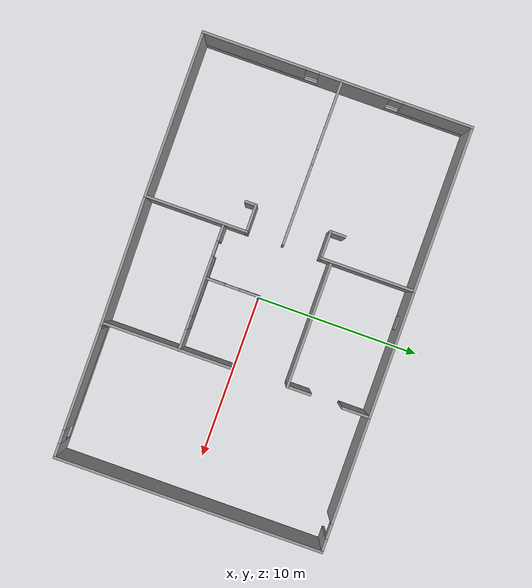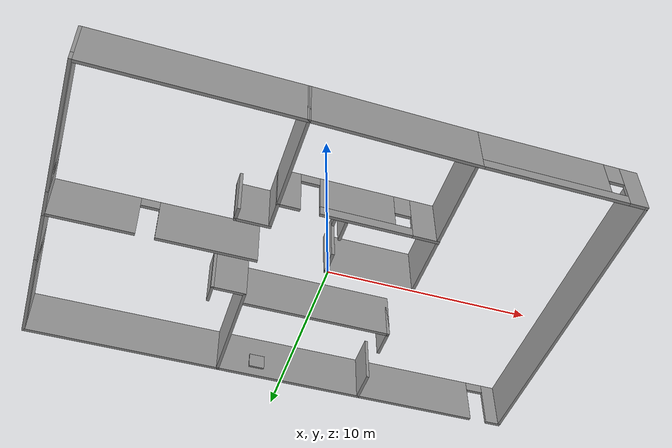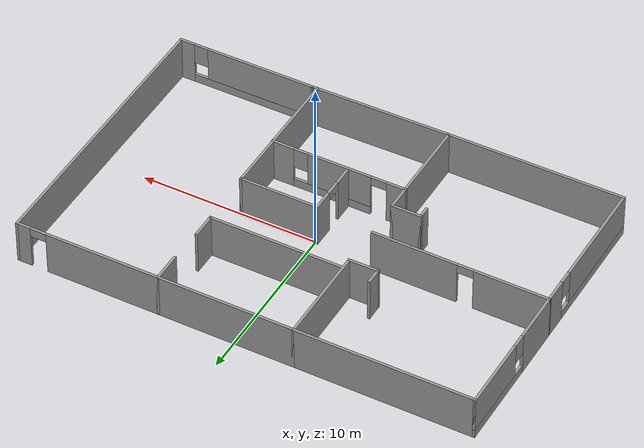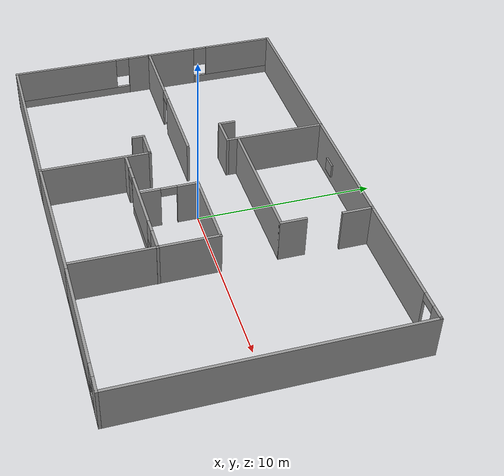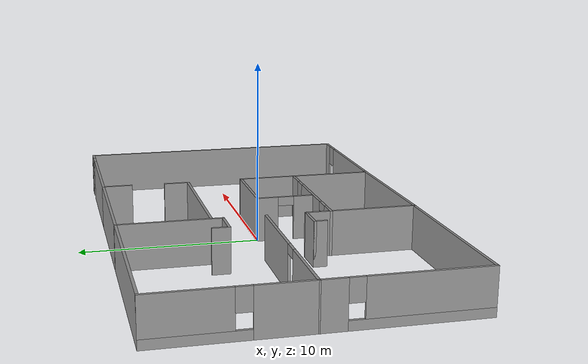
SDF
<?xml version='1.0'?>
<sdf version='1.6'>
  <model name='My_Building'>
    <pose frame=''>-0.418788 0.131839 0 0 -0 0</pose>
    <link name='Wall_67'>
      <pose frame=''>-12.7748 4.17547 0 0 -0 1.5708</pose>
      <visual name='Wall_67_Visual_0'>
        <pose frame=''>-2.51329 0 1.25 0 -0 0</pose>
        <geometry>
          <box>
            <size>2.97343 0.15 2.5</size>
          </box>
        </geometry>
        <material>
          <script>
            <uri>file://media/materials/scripts/gazebo.material</uri>
            <name>Gazebo/Grey</name>
          </script>
          <ambient>1 1 1 1</ambient>
        </material>
        <meta>
          <layer>0</layer>
        </meta>
      </visual>
      <collision name='Wall_67_Collision_0'>
        <geometry>
          <box>
            <size>2.97343 0.15 2.5</size>
          </box>
        </geometry>
        <pose frame=''>-2.51329 0 1.25 0 -0 0</pose>
      </collision>
      <visual name='Wall_67_Visual_1'>
        <pose frame=''>1.48671 0 0.25 0 -0 0</pose>
        <geometry>
          <box>
            <size>5.02658 0.15 0.5</size>
          </box>
        </geometry>
        <material>
          <script>
            <uri>file://media/materials/scripts/gazebo.material</uri>
            <name>Gazebo/Grey</name>
          </script>
          <ambient>1 1 1 1</ambient>
        </material>
        <meta>
          <layer>0</layer>
        </meta>
      </visual>
      <collision name='Wall_67_Collision_1'>
        <geometry>
          <box>
            <size>5.02658 0.15 0.5</size>
          </box>
        </geometry>
        <pose frame=''>1.48671 0 0.25 0 -0 0</pose>
      </collision>
      <visual name='Wall_67_Visual_2'>
        <pose frame=''>1.88671 0 1.5 0 -0 0</pose>
        <geometry>
          <box>
            <size>4.22658 0.15 2</size>
          </box>
        </geometry>
        <material>
          <script>
            <uri>file://media/materials/scripts/gazebo.material</uri>
            <name>Gazebo/Grey</name>
          </script>
          <ambient>1 1 1 1</ambient>
        </material>
        <meta>
          <layer>0</layer>
        </meta>
      </visual>
      <collision name='Wall_67_Collision_2'>
        <geometry>
          <box>
            <size>4.22658 0.15 2</size>
          </box>
        </geometry>
        <pose frame=''>1.88671 0 1.5 0 -0 0</pose>
      </collision>
      <visual name='Wall_67_Visual_3'>
        <pose frame=''>-0.626575 0 1.9 0 -0 0</pose>
        <geometry>
          <box>
            <size>0.8 0.15 1.2</size>
          </box>
        </geometry>
        <material>
          <script>
            <uri>file://media/materials/scripts/gazebo.material</uri>
            <name>Gazebo/Grey</name>
          </script>
          <ambient>1 1 1 1</ambient>
        </material>
        <meta>
          <layer>0</layer>
        </meta>
      </visual>
      <collision name='Wall_67_Collision_3'>
        <geometry>
          <box>
            <size>0.8 0.15 1.2</size>
          </box>
        </geometry>
        <pose frame=''>-0.626575 0 1.9 0 -0 0</pose>
      </collision>
    </link>
    <link name='Wall_68'>
      <collision name='Wall_68_Collision'>
        <geometry>
          <box>
            <size>10 0.15 2.5</size>
          </box>
        </geometry>
        <pose frame=''>0 0 1.25 0 -0 0</pose>
      </collision>
      <visual name='Wall_68_Visual'>
        <pose frame=''>0 0 1.25 0 -0 0</pose>
        <geometry>
          <box>
            <size>10 0.15 2.5</size>
          </box>
        </geometry>
        <material>
          <script>
            <uri>file://media/materials/scripts/gazebo.material</uri>
            <name>Gazebo/Grey</name>
          </script>
          <ambient>1 1 1 1</ambient>
        </material>
        <meta>
          <layer>0</layer>
        </meta>
      </visual>
      <pose frame=''>-7.8498 8.10047 0 0 -0 0</pose>
    </link>
    <link name='Wall_69'>
      <collision name='Wall_69_Collision'>
        <geometry>
          <box>
            <size>5.75 0.15 2.5</size>
          </box>
        </geometry>
        <pose frame=''>0 0 1.25 0 -0 0</pose>
      </collision>
      <visual name='Wall_69_Visual'>
        <pose frame=''>0 0 1.25 0 -0 0</pose>
        <geometry>
          <box>
            <size>5.75 0.15 2.5</size>
          </box>
        </geometry>
        <material>
          <script>
            <uri>file://media/materials/scripts/gazebo.material</uri>
            <name>Gazebo/Grey</name>
          </script>
          <ambient>1 1 1 1</ambient>
        </material>
        <meta>
          <layer>0</layer>
        </meta>
      </visual>
      <pose frame=''>-2.9248 5.30047 0 0 -0 -1.5708</pose>
    </link>
    <link name='Wall_70'>
      <collision name='Wall_70_Collision'>
        <geometry>
          <box>
            <size>1.75 0.15 2.5</size>
          </box>
        </geometry>
        <pose frame=''>0 0 1.25 0 -0 0</pose>
      </collision>
      <visual name='Wall_70_Visual'>
        <pose frame=''>0 0 1.25 0 -0 0</pose>
        <geometry>
          <box>
            <size>1.75 0.15 2.5</size>
          </box>
        </geometry>
        <material>
          <script>
            <uri>file://media/materials/scripts/gazebo.material</uri>
            <name>Gazebo/Grey</name>
          </script>
          <ambient>1 1 1 1</ambient>
        </material>
        <meta>
          <layer>0</layer>
        </meta>
      </visual>
      <pose frame=''>-3.7248 2.50047 0 0 -0 3.14159</pose>
    </link>
    <link name='Wall_71'>
      <collision name='Wall_71_Collision'>
        <geometry>
          <box>
            <size>1 0.15 2.5</size>
          </box>
        </geometry>
        <pose frame=''>0 0 1.25 0 -0 0</pose>
      </collision>
      <visual name='Wall_71_Visual'>
        <pose frame=''>0 0 1.25 0 -0 0</pose>
        <geometry>
          <box>
            <size>1 0.15 2.5</size>
          </box>
        </geometry>
        <material>
          <script>
            <uri>file://media/materials/scripts/gazebo.material</uri>
            <name>Gazebo/Grey</name>
          </script>
          <ambient>1 1 1 1</ambient>
        </material>
        <meta>
          <layer>0</layer>
        </meta>
      </visual>
      <pose frame=''>-4.5248 2.92547 0 0 -0 1.5708</pose>
    </link>
    <link name='Wall_73'>
      <pose frame=''>-7.88036 0.223874 0 0 -0 3.13616</pose>
      <visual name='Wall_73_Visual_0'>
        <pose frame=''>-2.55008 0 1.25 0 -0 0</pose>
        <geometry>
          <box>
            <size>4.83885 0.15 2.5</size>
          </box>
        </geometry>
        <material>
          <script>
            <uri>file://media/materials/scripts/gazebo.material</uri>
            <name>Gazebo/Grey</name>
          </script>
          <ambient>1 1 1 1</ambient>
        </material>
        <meta>
          <layer>0</layer>
        </meta>
      </visual>
      <collision name='Wall_73_Collision_0'>
        <geometry>
          <box>
            <size>4.83885 0.15 2.5</size>
          </box>
        </geometry>
        <pose frame=''>-2.55008 0 1.25 0 -0 0</pose>
      </collision>
      <visual name='Wall_73_Visual_1'>
        <pose frame=''>2.86943 0 1.25 0 -0 0</pose>
        <geometry>
          <box>
            <size>4.20017 0.15 2.5</size>
          </box>
        </geometry>
        <material>
          <script>
            <uri>file://media/materials/scripts/gazebo.material</uri>
            <name>Gazebo/Grey</name>
          </script>
          <ambient>1 1 1 1</ambient>
        </material>
        <meta>
          <layer>0</layer>
        </meta>
      </visual>
      <collision name='Wall_73_Collision_1'>
        <geometry>
          <box>
            <size>4.20017 0.15 2.5</size>
          </box>
        </geometry>
        <pose frame=''>2.86943 0 1.25 0 -0 0</pose>
      </collision>
      <visual name='Wall_73_Visual_2'>
        <pose frame=''>0.319343 0 2.25 0 -0 0</pose>
        <geometry>
          <box>
            <size>0.9 0.15 0.5</size>
          </box>
        </geometry>
        <material>
          <script>
            <uri>file://media/materials/scripts/gazebo.material</uri>
            <name>Gazebo/Grey</name>
          </script>
          <ambient>1 1 1 1</ambient>
        </material>
        <meta>
          <layer>0</layer>
        </meta>
      </visual>
      <collision name='Wall_73_Collision_2'>
        <geometry>
          <box>
            <size>0.9 0.15 0.5</size>
          </box>
        </geometry>
        <pose frame=''>0.319343 0 2.25 0 -0 0</pose>
      </collision>
    </link>
    <link name='Wall_74'>
      <pose frame=''>-12.7748 -3.92453 0 0 -0 -1.5708</pose>
      <visual name='Wall_74_Visual_0'>
        <pose frame=''>-3.53469 0 1.25 0 -0 0</pose>
        <geometry>
          <box>
            <size>1.43061 0.15 2.5</size>
          </box>
        </geometry>
        <material>
          <script>
            <uri>file://media/materials/scripts/gazebo.material</uri>
            <name>Gazebo/Grey</name>
          </script>
          <ambient>1 1 1 1</ambient>
        </material>
        <meta>
          <layer>0</layer>
        </meta>
      </visual>
      <collision name='Wall_74_Collision_0'>
        <geometry>
          <box>
            <size>1.43061 0.15 2.5</size>
          </box>
        </geometry>
        <pose frame=''>-3.53469 0 1.25 0 -0 0</pose>
      </collision>
      <visual name='Wall_74_Visual_1'>
        <pose frame=''>0.715307 0 0.25 0 -0 0</pose>
        <geometry>
          <box>
            <size>7.06939 0.15 0.5</size>
          </box>
        </geometry>
        <material>
          <script>
            <uri>file://media/materials/scripts/gazebo.material</uri>
            <name>Gazebo/Grey</name>
          </script>
          <ambient>1 1 1 1</ambient>
        </material>
        <meta>
          <layer>0</layer>
        </meta>
      </visual>
      <collision name='Wall_74_Collision_1'>
        <geometry>
          <box>
            <size>7.06939 0.15 0.5</size>
          </box>
        </geometry>
        <pose frame=''>0.715307 0 0.25 0 -0 0</pose>
      </collision>
      <visual name='Wall_74_Visual_2'>
        <pose frame=''>1.11531 0 1.5 0 -0 0</pose>
        <geometry>
          <box>
            <size>6.26939 0.15 2</size>
          </box>
        </geometry>
        <material>
          <script>
            <uri>file://media/materials/scripts/gazebo.material</uri>
            <name>Gazebo/Grey</name>
          </script>
          <ambient>1 1 1 1</ambient>
        </material>
        <meta>
          <layer>0</layer>
        </meta>
      </visual>
      <collision name='Wall_74_Collision_2'>
        <geometry>
          <box>
            <size>6.26939 0.15 2</size>
          </box>
        </geometry>
        <pose frame=''>1.11531 0 1.5 0 -0 0</pose>
      </collision>
      <visual name='Wall_74_Visual_3'>
        <pose frame=''>-2.41939 0 1.9 0 -0 0</pose>
        <geometry>
          <box>
            <size>0.8 0.15 1.2</size>
          </box>
        </geometry>
        <material>
          <script>
            <uri>file://media/materials/scripts/gazebo.material</uri>
            <name>Gazebo/Grey</name>
          </script>
          <ambient>1 1 1 1</ambient>
        </material>
        <meta>
          <layer>0</layer>
        </meta>
      </visual>
      <collision name='Wall_74_Collision_3'>
        <geometry>
          <box>
            <size>0.8 0.15 1.2</size>
          </box>
        </geometry>
        <pose frame=''>-2.41939 0 1.9 0 -0 0</pose>
      </collision>
    </link>
    <link name='Wall_75'>
      <collision name='Wall_75_Collision'>
        <geometry>
          <box>
            <size>10 0.15 2.5</size>
          </box>
        </geometry>
        <pose frame=''>0 0 1.25 0 -0 0</pose>
      </collision>
      <visual name='Wall_75_Visual'>
        <pose frame=''>0 0 1.25 0 -0 0</pose>
        <geometry>
          <box>
            <size>10 0.15 2.5</size>
          </box>
        </geometry>
        <material>
          <script>
            <uri>file://media/materials/scripts/gazebo.material</uri>
            <name>Gazebo/Grey</name>
          </script>
          <ambient>1 1 1 1</ambient>
        </material>
        <meta>
          <layer>0</layer>
        </meta>
      </visual>
      <pose frame=''>-7.8498 -8.09953 0 0 -0 0</pose>
    </link>
    <link name='Wall_76'>
      <collision name='Wall_76_Collision'>
        <geometry>
          <box>
            <size>6.25 0.15 2.5</size>
          </box>
        </geometry>
        <pose frame=''>0 0 1.25 0 -0 0</pose>
      </collision>
      <visual name='Wall_76_Visual'>
        <pose frame=''>0 0 1.25 0 -0 0</pose>
        <geometry>
          <box>
            <size>6.25 0.15 2.5</size>
          </box>
        </geometry>
        <material>
          <script>
            <uri>file://media/materials/scripts/gazebo.material</uri>
            <name>Gazebo/Grey</name>
          </script>
          <ambient>1 1 1 1</ambient>
        </material>
        <meta>
          <layer>0</layer>
        </meta>
      </visual>
      <pose frame=''>-2.9248 -5.04953 0 0 -0 1.5708</pose>
    </link>
    <link name='Wall_77'>
      <collision name='Wall_77_Collision'>
        <geometry>
          <box>
            <size>1.75 0.15 2.5</size>
          </box>
        </geometry>
        <pose frame=''>0 0 1.25 0 -0 0</pose>
      </collision>
      <visual name='Wall_77_Visual'>
        <pose frame=''>0 0 1.25 0 -0 0</pose>
        <geometry>
          <box>
            <size>1.75 0.15 2.5</size>
          </box>
        </geometry>
        <material>
          <script>
            <uri>file://media/materials/scripts/gazebo.material</uri>
            <name>Gazebo/Grey</name>
          </script>
          <ambient>1 1 1 1</ambient>
        </material>
        <meta>
          <layer>0</layer>
        </meta>
      </visual>
      <pose frame=''>-3.7248 -1.99953 0 0 -0 3.14159</pose>
    </link>
    <link name='Wall_78'>
      <collision name='Wall_78_Collision'>
        <geometry>
          <box>
            <size>0.75 0.15 2.5</size>
          </box>
        </geometry>
        <pose frame=''>0 0 1.25 0 -0 0</pose>
      </collision>
      <visual name='Wall_78_Visual'>
        <pose frame=''>0 0 1.25 0 -0 0</pose>
        <geometry>
          <box>
            <size>0.75 0.15 2.5</size>
          </box>
        </geometry>
        <material>
          <script>
            <uri>file://media/materials/scripts/gazebo.material</uri>
            <name>Gazebo/Grey</name>
          </script>
          <ambient>1 1 1 1</ambient>
        </material>
        <meta>
          <layer>0</layer>
        </meta>
      </visual>
      <pose frame=''>-4.5248 -2.29953 0 0 -0 -1.5708</pose>
    </link>
    <link name='Wall_80'>
      <collision name='Wall_80_Collision'>
        <geometry>
          <box>
            <size>7.5 0.15 2.5</size>
          </box>
        </geometry>
        <pose frame=''>0 0 1.25 0 -0 0</pose>
      </collision>
      <visual name='Wall_80_Visual'>
        <pose frame=''>0 0 1.25 0 -0 0</pose>
        <geometry>
          <box>
            <size>7.5 0.15 2.5</size>
          </box>
        </geometry>
        <material>
          <script>
            <uri>file://media/materials/scripts/gazebo.material</uri>
            <name>Gazebo/Grey</name>
          </script>
          <ambient>1 1 1 1</ambient>
        </material>
        <meta>
          <layer>0</layer>
        </meta>
      </visual>
      <pose frame=''>0.901877 3.1233 0 0 -0 0</pose>
    </link>
    <link name='Wall_81'>
      <collision name='Wall_81_Collision'>
        <geometry>
          <box>
            <size>1.5 0.15 2.5</size>
          </box>
        </geometry>
        <pose frame=''>0 0 1.25 0 -0 0</pose>
      </collision>
      <visual name='Wall_81_Visual'>
        <pose frame=''>0 0 1.25 0 -0 0</pose>
        <geometry>
          <box>
            <size>1.5 0.15 2.5</size>
          </box>
        </geometry>
        <material>
          <script>
            <uri>file://media/materials/scripts/gazebo.material</uri>
            <name>Gazebo/Grey</name>
          </script>
          <ambient>1 1 1 1</ambient>
        </material>
        <meta>
          <layer>0</layer>
        </meta>
      </visual>
      <pose frame=''>4.57688 3.7983 0 0 -0 1.5708</pose>
    </link>
    <link name='Wall_83'>
      <collision name='Wall_83_Collision'>
        <geometry>
          <box>
            <size>7.75 0.15 2.5</size>
          </box>
        </geometry>
        <pose frame=''>0 0 1.25 0 -0 0</pose>
      </collision>
      <visual name='Wall_83_Visual'>
        <pose frame=''>0 0 1.25 0 -0 0</pose>
        <geometry>
          <box>
            <size>7.75 0.15 2.5</size>
          </box>
        </geometry>
        <material>
          <script>
            <uri>file://media/materials/scripts/gazebo.material</uri>
            <name>Gazebo/Grey</name>
          </script>
          <ambient>1 1 1 1</ambient>
        </material>
        <meta>
          <layer>0</layer>
        </meta>
      </visual>
      <pose frame=''>0.875203 8.10047 0 0 -0 0</pose>
    </link>
    <link name='Wall_84'>
      <collision name='Wall_84_Collision'>
        <geometry>
          <box>
            <size>1.75 0.15 2.5</size>
          </box>
        </geometry>
        <pose frame=''>0 0 1.25 0 -0 0</pose>
      </collision>
      <visual name='Wall_84_Visual'>
        <pose frame=''>0 0 1.25 0 -0 0</pose>
        <geometry>
          <box>
            <size>1.75 0.15 2.5</size>
          </box>
        </geometry>
        <material>
          <script>
            <uri>file://media/materials/scripts/gazebo.material</uri>
            <name>Gazebo/Grey</name>
          </script>
          <ambient>1 1 1 1</ambient>
        </material>
        <meta>
          <layer>0</layer>
        </meta>
      </visual>
      <pose frame=''>4.6752 7.30047 0 0 -0 -1.5708</pose>
    </link>
    <link name='Wall_86'>
      <pose frame=''>8.7252 8.10047 0 0 -0 0</pose>
      <visual name='Wall_86_Visual_0'>
        <pose frame=''>-0.881209 0 1.25 0 -0 0</pose>
        <geometry>
          <box>
            <size>6.48758 0.15 2.5</size>
          </box>
        </geometry>
        <material>
          <script>
            <uri>file://media/materials/scripts/gazebo.material</uri>
            <name>Gazebo/Grey</name>
          </script>
          <ambient>1 1 1 1</ambient>
        </material>
        <meta>
          <layer>0</layer>
        </meta>
      </visual>
      <collision name='Wall_86_Collision_0'>
        <geometry>
          <box>
            <size>6.48758 0.15 2.5</size>
          </box>
        </geometry>
        <pose frame=''>-0.881209 0 1.25 0 -0 0</pose>
      </collision>
      <visual name='Wall_86_Visual_1'>
        <pose frame=''>3.69379 0 1.25 0 -0 0</pose>
        <geometry>
          <box>
            <size>0.862418 0.15 2.5</size>
          </box>
        </geometry>
        <material>
          <script>
            <uri>file://media/materials/scripts/gazebo.material</uri>
            <name>Gazebo/Grey</name>
          </script>
          <ambient>1 1 1 1</ambient>
        </material>
        <meta>
          <layer>0</layer>
        </meta>
      </visual>
      <collision name='Wall_86_Collision_1'>
        <geometry>
          <box>
            <size>0.862418 0.15 2.5</size>
          </box>
        </geometry>
        <pose frame=''>3.69379 0 1.25 0 -0 0</pose>
      </collision>
      <visual name='Wall_86_Visual_2'>
        <pose frame=''>2.81258 0 2.25 0 -0 0</pose>
        <geometry>
          <box>
            <size>0.9 0.15 0.5</size>
          </box>
        </geometry>
        <material>
          <script>
            <uri>file://media/materials/scripts/gazebo.material</uri>
            <name>Gazebo/Grey</name>
          </script>
          <ambient>1 1 1 1</ambient>
        </material>
        <meta>
          <layer>0</layer>
        </meta>
      </visual>
      <collision name='Wall_86_Collision_2'>
        <geometry>
          <box>
            <size>0.9 0.15 0.5</size>
          </box>
        </geometry>
        <pose frame=''>2.81258 0 2.25 0 -0 0</pose>
      </collision>
    </link>
    <link name='Wall_87'>
      <collision name='Wall_87_Collision'>
        <geometry>
          <box>
            <size>16.25 0.15 2.5</size>
          </box>
        </geometry>
        <pose frame=''>0 0 1.25 0 -0 0</pose>
      </collision>
      <visual name='Wall_87_Visual'>
        <pose frame=''>0 0 1.25 0 -0 0</pose>
        <geometry>
          <box>
            <size>16.25 0.15 2.5</size>
          </box>
        </geometry>
        <material>
          <script>
            <uri>file://media/materials/scripts/gazebo.material</uri>
            <name>Gazebo/Grey</name>
          </script>
          <ambient>1 1 1 1</ambient>
        </material>
        <meta>
          <layer>0</layer>
        </meta>
      </visual>
      <pose frame=''>12.7752 0.050474 0 0 -0 -1.5708</pose>
    </link>
    <link name='Wall_88'>
      <pose frame=''>8.8502 -7.99953 0 0 -0 3.14159</pose>
      <visual name='Wall_88_Visual_0'>
        <pose frame=''>-3.54379 0 1.25 0 -0 0</pose>
        <geometry>
          <box>
            <size>0.912418 0.15 2.5</size>
          </box>
        </geometry>
        <material>
          <script>
            <uri>file://media/materials/scripts/gazebo.material</uri>
            <name>Gazebo/Grey</name>
          </script>
          <ambient>1 1 1 1</ambient>
        </material>
        <meta>
          <layer>0</layer>
        </meta>
      </visual>
      <collision name='Wall_88_Collision_0'>
        <geometry>
          <box>
            <size>0.912418 0.15 2.5</size>
          </box>
        </geometry>
        <pose frame=''>-3.54379 0 1.25 0 -0 0</pose>
      </collision>
      <visual name='Wall_88_Visual_1'>
        <pose frame=''>0.456209 0 0.25 0 -0 0</pose>
        <geometry>
          <box>
            <size>7.08758 0.15 0.5</size>
          </box>
        </geometry>
        <material>
          <script>
            <uri>file://media/materials/scripts/gazebo.material</uri>
            <name>Gazebo/Grey</name>
          </script>
          <ambient>1 1 1 1</ambient>
        </material>
        <meta>
          <layer>0</layer>
        </meta>
      </visual>
      <collision name='Wall_88_Collision_1'>
        <geometry>
          <box>
            <size>7.08758 0.15 0.5</size>
          </box>
        </geometry>
        <pose frame=''>0.456209 0 0.25 0 -0 0</pose>
      </collision>
      <visual name='Wall_88_Visual_2'>
        <pose frame=''>0.856209 0 1.5 0 -0 0</pose>
        <geometry>
          <box>
            <size>6.28758 0.15 2</size>
          </box>
        </geometry>
        <material>
          <script>
            <uri>file://media/materials/scripts/gazebo.material</uri>
            <name>Gazebo/Grey</name>
          </script>
          <ambient>1 1 1 1</ambient>
        </material>
        <meta>
          <layer>0</layer>
        </meta>
      </visual>
      <collision name='Wall_88_Collision_2'>
        <geometry>
          <box>
            <size>6.28758 0.15 2</size>
          </box>
        </geometry>
        <pose frame=''>0.856209 0 1.5 0 -0 0</pose>
      </collision>
      <visual name='Wall_88_Visual_3'>
        <pose frame=''>-2.68758 0 1.9 0 -0 0</pose>
        <geometry>
          <box>
            <size>0.8 0.15 1.2</size>
          </box>
        </geometry>
        <material>
          <script>
            <uri>file://media/materials/scripts/gazebo.material</uri>
            <name>Gazebo/Grey</name>
          </script>
          <ambient>1 1 1 1</ambient>
        </material>
        <meta>
          <layer>0</layer>
        </meta>
      </visual>
      <collision name='Wall_88_Collision_3'>
        <geometry>
          <box>
            <size>0.8 0.15 1.2</size>
          </box>
        </geometry>
        <pose frame=''>-2.68758 0 1.9 0 -0 0</pose>
      </collision>
    </link>
    <link name='Wall_89'>
      <collision name='Wall_89_Collision'>
        <geometry>
          <box>
            <size>8.00064 0.15 2.5</size>
          </box>
        </geometry>
        <pose frame=''>0 0 1.25 0 -0 0</pose>
      </collision>
      <visual name='Wall_89_Visual'>
        <pose frame=''>0 0 1.25 0 -0 0</pose>
        <geometry>
          <box>
            <size>8.00064 0.15 2.5</size>
          </box>
        </geometry>
        <material>
          <script>
            <uri>file://media/materials/scripts/gazebo.material</uri>
            <name>Gazebo/Grey</name>
          </script>
          <ambient>1 1 1 1</ambient>
        </material>
        <meta>
          <layer>0</layer>
        </meta>
      </visual>
      <pose frame=''>1.0002 -8.04953 0 0 -0 -3.12885</pose>
    </link>
    <link name='Wall_91'>
      <pose frame=''>0.3125 -1.65755 0 0 -0 1.5708</pose>
      <visual name='Wall_91_Visual_0'>
        <pose frame=''>-1.06769 0 1.25 0 -0 0</pose>
        <geometry>
          <box>
            <size>1.11461 0.15 2.5</size>
          </box>
        </geometry>
        <material>
          <script>
            <uri>file://media/materials/scripts/gazebo.material</uri>
            <name>Gazebo/Grey</name>
          </script>
          <ambient>1 1 1 1</ambient>
        </material>
        <meta>
          <layer>0</layer>
        </meta>
      </visual>
      <collision name='Wall_91_Collision_0'>
        <geometry>
          <box>
            <size>1.11461 0.15 2.5</size>
          </box>
        </geometry>
        <pose frame=''>-1.06769 0 1.25 0 -0 0</pose>
      </collision>
      <visual name='Wall_91_Visual_1'>
        <pose frame=''>1.00731 0 1.25 0 -0 0</pose>
        <geometry>
          <box>
            <size>1.23539 0.15 2.5</size>
          </box>
        </geometry>
        <material>
          <script>
            <uri>file://media/materials/scripts/gazebo.material</uri>
            <name>Gazebo/Grey</name>
          </script>
          <ambient>1 1 1 1</ambient>
        </material>
        <meta>
          <layer>0</layer>
        </meta>
      </visual>
      <collision name='Wall_91_Collision_1'>
        <geometry>
          <box>
            <size>1.23539 0.15 2.5</size>
          </box>
        </geometry>
        <pose frame=''>1.00731 0 1.25 0 -0 0</pose>
      </collision>
      <visual name='Wall_91_Visual_2'>
        <pose frame=''>-0.060389 0 2.25 0 -0 0</pose>
        <geometry>
          <box>
            <size>0.9 0.15 0.5</size>
          </box>
        </geometry>
        <material>
          <script>
            <uri>file://media/materials/scripts/gazebo.material</uri>
            <name>Gazebo/Grey</name>
          </script>
          <ambient>1 1 1 1</ambient>
        </material>
        <meta>
          <layer>0</layer>
        </meta>
      </visual>
      <collision name='Wall_91_Collision_2'>
        <geometry>
          <box>
            <size>0.9 0.15 0.5</size>
          </box>
        </geometry>
        <pose frame=''>-0.060389 0 2.25 0 -0 0</pose>
      </collision>
    </link>
    <link name='Wall_92'>
      <collision name='Wall_92_Collision'>
        <geometry>
          <box>
            <size>4.5 0.15 2.5</size>
          </box>
        </geometry>
        <pose frame=''>0 0 1.25 0 -0 0</pose>
      </collision>
      <visual name='Wall_92_Visual'>
        <pose frame=''>0 0 1.25 0 -0 0</pose>
        <geometry>
          <box>
            <size>4.5 0.15 2.5</size>
          </box>
        </geometry>
        <material>
          <script>
            <uri>file://media/materials/scripts/gazebo.material</uri>
            <name>Gazebo/Grey</name>
          </script>
          <ambient>1 1 1 1</ambient>
        </material>
        <meta>
          <layer>0</layer>
        </meta>
      </visual>
      <pose frame=''>2.4875 -0.107552 0 0 -0 0</pose>
    </link>
    <link name='Wall_93'>
      <collision name='Wall_93_Collision'>
        <geometry>
          <box>
            <size>8 0.15 2.5</size>
          </box>
        </geometry>
        <pose frame=''>0 0 1.25 0 -0 0</pose>
      </collision>
      <visual name='Wall_93_Visual'>
        <pose frame=''>0 0 1.25 0 -0 0</pose>
        <geometry>
          <box>
            <size>8 0.15 2.5</size>
          </box>
        </geometry>
        <material>
          <script>
            <uri>file://media/materials/scripts/gazebo.material</uri>
            <name>Gazebo/Grey</name>
          </script>
          <ambient>1 1 1 1</ambient>
        </material>
        <meta>
          <layer>0</layer>
        </meta>
      </visual>
      <pose frame=''>4.6625 -4.03255 0 0 -0 -1.5708</pose>
    </link>
    <link name='Wall_95'>
      <pose frame=''>0.874933 -3.36715 0 0 -0 3.14159</pose>
      <visual name='Wall_95_Visual_0'>
        <pose frame=''>-3.21289 0 1.25 0 -0 0</pose>
        <geometry>
          <box>
            <size>1.32421 0.15 2.5</size>
          </box>
        </geometry>
        <material>
          <script>
            <uri>file://media/materials/scripts/gazebo.material</uri>
            <name>Gazebo/Grey</name>
          </script>
          <ambient>1 1 1 1</ambient>
        </material>
        <meta>
          <layer>0</layer>
        </meta>
      </visual>
      <collision name='Wall_95_Collision_0'>
        <geometry>
          <box>
            <size>1.32421 0.15 2.5</size>
          </box>
        </geometry>
        <pose frame=''>-3.21289 0 1.25 0 -0 0</pose>
      </collision>
      <visual name='Wall_95_Visual_1'>
        <pose frame=''>3.32152 0 1.25 0 -0 0</pose>
        <geometry>
          <box>
            <size>1.10695 0.15 2.5</size>
          </box>
        </geometry>
        <material>
          <script>
            <uri>file://media/materials/scripts/gazebo.material</uri>
            <name>Gazebo/Grey</name>
          </script>
          <ambient>1 1 1 1</ambient>
        </material>
        <meta>
          <layer>0</layer>
        </meta>
      </visual>
      <collision name='Wall_95_Collision_1'>
        <geometry>
          <box>
            <size>1.10695 0.15 2.5</size>
          </box>
        </geometry>
        <pose frame=''>3.32152 0 1.25 0 -0 0</pose>
      </collision>
      <visual name='Wall_95_Visual_2'>
        <pose frame=''>-0.341371 0 0.25 0 -0 0</pose>
        <geometry>
          <box>
            <size>4.41883 0.15 0.5</size>
          </box>
        </geometry>
        <material>
          <script>
            <uri>file://media/materials/scripts/gazebo.material</uri>
            <name>Gazebo/Grey</name>
          </script>
          <ambient>1 1 1 1</ambient>
        </material>
        <meta>
          <layer>0</layer>
        </meta>
      </visual>
      <collision name='Wall_95_Collision_2'>
        <geometry>
          <box>
            <size>4.41883 0.15 0.5</size>
          </box>
        </geometry>
        <pose frame=''>-0.341371 0 0.25 0 -0 0</pose>
      </collision>
      <visual name='Wall_95_Visual_3'>
        <pose frame=''>0.058629 0 1.5 0 -0 0</pose>
        <geometry>
          <box>
            <size>3.61883 0.15 2</size>
          </box>
        </geometry>
        <material>
          <script>
            <uri>file://media/materials/scripts/gazebo.material</uri>
            <name>Gazebo/Grey</name>
          </script>
          <ambient>1 1 1 1</ambient>
        </material>
        <meta>
          <layer>0</layer>
        </meta>
      </visual>
      <collision name='Wall_95_Collision_3'>
        <geometry>
          <box>
            <size>3.61883 0.15 2</size>
          </box>
        </geometry>
        <pose frame=''>0.058629 0 1.5 0 -0 0</pose>
      </collision>
      <visual name='Wall_95_Visual_4'>
        <pose frame=''>-2.15079 0 1.9 0 -0 0</pose>
        <geometry>
          <box>
            <size>0.8 0.15 1.2</size>
          </box>
        </geometry>
        <material>
          <script>
            <uri>file://media/materials/scripts/gazebo.material</uri>
            <name>Gazebo/Grey</name>
          </script>
          <ambient>1 1 1 1</ambient>
        </material>
        <meta>
          <layer>0</layer>
        </meta>
      </visual>
      <collision name='Wall_95_Collision_4'>
        <geometry>
          <box>
            <size>0.8 0.15 1.2</size>
          </box>
        </geometry>
        <pose frame=''>-2.15079 0 1.9 0 -0 0</pose>
      </collision>
      <visual name='Wall_95_Visual_5'>
        <pose frame=''>2.31805 0 2.25 0 -0 0</pose>
        <geometry>
          <box>
            <size>0.9 0.15 0.5</size>
          </box>
        </geometry>
        <material>
          <script>
            <uri>file://media/materials/scripts/gazebo.material</uri>
            <name>Gazebo/Grey</name>
          </script>
          <ambient>1 1 1 1</ambient>
        </material>
        <meta>
          <layer>0</layer>
        </meta>
      </visual>
      <collision name='Wall_95_Collision_5'>
        <geometry>
          <box>
            <size>0.9 0.15 0.5</size>
          </box>
        </geometry>
        <pose frame=''>2.31805 0 2.25 0 -0 0</pose>
      </collision>
    </link>
    <link name='Window_7'>
      <collision name='Window_7_Collision'>
        <geometry>
          <box>
            <size>0.8 0.17 0.8</size>
          </box>
        </geometry>
        <pose frame=''>0 0 0.4 0 -0 0</pose>
      </collision>
      <visual name='Window_7_Visual'>
        <pose frame=''>0 0 0.4 0 -0 0</pose>
        <geometry>
          <box>
            <size>0.8 0.17 0.8</size>
          </box>
        </geometry>
        <material>
          <script>
            <uri>file://media/materials/scripts/gazebo.material</uri>
            <name>Gazebo/Grey</name>
          </script>
        </material>
      </visual>
      <pose frame=''>-0.911109 8.01773 0.5 0 -0 0</pose>
    </link>
    <static>1</static>
  </model>
</sdf>
